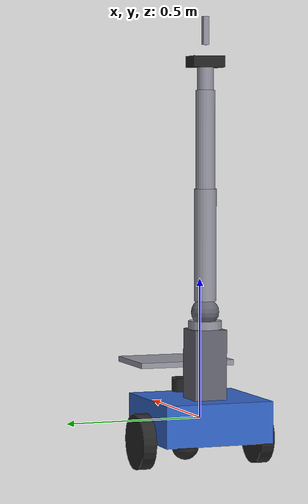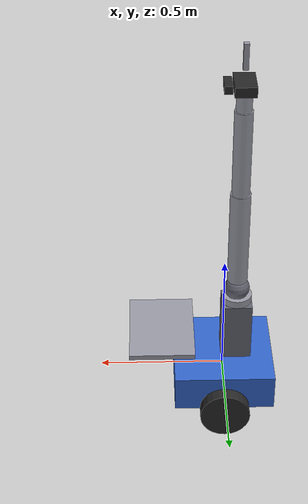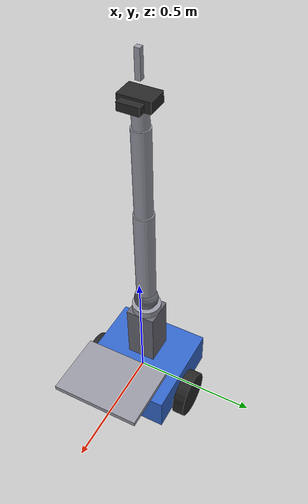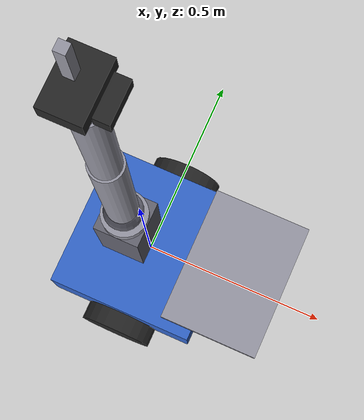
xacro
<?xml version="1.0"?>
<robot name="shelf_bot" xmlns:xacro="http://www.ros.org/wiki/xacro">

  <xacro:arg name="controllers_yaml" default=""/>

  <!-- ===================== helper macros ===================== -->
  <xacro:macro name="box_inertia" params="m x y z">
    <inertial>
      <mass value="${m}"/>
      <inertia
        ixx="${m*(y*y+z*z)/12.0}" iyy="${m*(x*x+z*z)/12.0}" izz="${m*(x*x+y*y)/12.0}"
        ixy="0" ixz="0" iyz="0"/>
    </inertial>
  </xacro:macro>

  <xacro:macro name="cyl_inertia" params="m r l">
    <inertial>
      <mass value="${m}"/>
      <inertia
        ixx="${m*(3*r*r+l*l)/12.0}" iyy="${m*(3*r*r+l*l)/12.0}" izz="${m*r*r/2.0}"
        ixy="0" ixz="0" iyz="0"/>
    </inertial>
  </xacro:macro>

  <material name="grey"><color rgba="0.4 0.4 0.45 1"/></material>
  <material name="dark"><color rgba="0.15 0.15 0.15 1"/></material>
  <material name="blue"><color rgba="0.2 0.4 0.8 1"/></material>
  <material name="metal"><color rgba="0.6 0.6 0.65 1"/></material>

  <!-- ===================== base ===================== -->
  <link name="base_link">
    <visual>
      <geometry><box size="0.40 0.40 0.15"/></geometry>
      <material name="blue"/>
    </visual>
    <collision><geometry><box size="0.40 0.40 0.15"/></geometry></collision>
    <xacro:box_inertia m="15.0" x="0.40" y="0.40" z="0.15"/>
  </link>

  <!-- drive wheels (continuous, velocity-controlled) -->
  <xacro:macro name="wheel" params="name y">
    <link name="${name}">
      <visual>
        <origin rpy="1.5708 0 0"/>
        <geometry><cylinder radius="0.10" length="0.05"/></geometry>
        <material name="dark"/>
      </visual>
      <collision>
        <origin rpy="1.5708 0 0"/>
        <geometry><cylinder radius="0.10" length="0.05"/></geometry>
      </collision>
      <xacro:cyl_inertia m="1.0" r="0.10" l="0.05"/>
    </link>
    <joint name="${name}_joint" type="continuous">
      <parent link="base_link"/>
      <child link="${name}"/>
      <origin xyz="0 ${y} -0.075"/>
      <axis xyz="0 1 0"/>
    </joint>
  </xacro:macro>
  <xacro:wheel name="left_wheel" y="0.225"/>
  <xacro:wheel name="right_wheel" y="-0.225"/>

  <!-- front caster (passive) -->
  <link name="caster">
    <visual><geometry><sphere radius="0.05"/></geometry><material name="dark"/></visual>
    <collision><geometry><sphere radius="0.05"/></geometry></collision>
    <xacro:cyl_inertia m="0.3" r="0.05" l="0.05"/>
  </link>
  <joint name="caster_joint" type="fixed">
    <parent link="base_link"/><child link="caster"/>
    <origin xyz="0.15 0 -0.125"/>
  </joint>

  <!-- column carrying the arm -->
  <link name="column">
    <visual><geometry><box size="0.12 0.12 0.25"/></geometry><material name="grey"/></visual>
    <collision><geometry><box size="0.12 0.12 0.25"/></geometry></collision>
    <xacro:box_inertia m="3.0" x="0.12" y="0.12" z="0.25"/>
  </link>
  <joint name="column_joint" type="fixed">
    <parent link="base_link"/><child link="column"/>
    <origin xyz="-0.05 0 0.20"/>
  </joint>

  <!-- tray deck in front of the column; cans are spawned into its cells -->
  <link name="tray">
    <visual><geometry><box size="0.26 0.36 0.02"/></geometry><material name="metal"/></visual>
    <collision>
      <geometry><box size="0.26 0.36 0.02"/></geometry>
    </collision>
    <xacro:box_inertia m="1.0" x="0.26" y="0.36" z="0.02"/>
  </link>
  <joint name="tray_joint" type="fixed">
    <parent link="base_link"/><child link="tray"/>
    <origin xyz="0.25 0 0.18"/>
  </joint>

  <!-- ===================== 5-DoF arm ===================== -->
  <!-- arm base at base_link z=0.325 -> world z=0.5 when spawned -->
  <link name="arm_base">
    <visual><geometry><cylinder radius="0.06" length="0.06"/></geometry><material name="metal"/></visual>
    <collision><geometry><cylinder radius="0.06" length="0.06"/></geometry></collision>
    <xacro:cyl_inertia m="1.0" r="0.06" l="0.06"/>
  </link>
  <joint name="arm_base_joint" type="fixed">
    <parent link="base_link"/><child link="arm_base"/>
    <origin xyz="-0.05 0 0.325"/>
  </joint>

  <xacro:macro name="arm_link" params="name len r">
    <link name="${name}">
      <visual>
        <origin xyz="0 0 ${len/2.0}"/>
        <geometry><cylinder radius="${r}" length="${len}"/></geometry>
        <material name="metal"/>
      </visual>
      <collision>
        <origin xyz="0 0 ${len/2.0}"/>
        <geometry><cylinder radius="${r}" length="${len}"/></geometry>
      </collision>
      <xacro:cyl_inertia m="1.2" r="${r}" l="${len}"/>
    </link>
  </xacro:macro>

  <!-- joint 1: shoulder pan (about z) -->
  <link name="shoulder">
    <visual><geometry><sphere radius="0.05"/></geometry><material name="grey"/></visual>
    <collision><geometry><sphere radius="0.05"/></geometry></collision>
    <xacro:cyl_inertia m="0.8" r="0.05" l="0.05"/>
  </link>
  <joint name="joint_pan" type="revolute">
    <parent link="arm_base"/><child link="shoulder"/>
    <origin xyz="0 0 0.06"/>
    <axis xyz="0 0 1"/>
    <limit lower="-3.14" upper="3.14" effort="60" velocity="2.0"/>
  </joint>

  <!-- joint 2: shoulder lift (about y) -> upper arm -->
  <xacro:arm_link name="upper_arm" len="0.40" r="0.04"/>
  <joint name="joint_lift" type="revolute">
    <parent link="shoulder"/><child link="upper_arm"/>
    <origin xyz="0 0 0.04"/>
    <axis xyz="0 1 0"/>
    <limit lower="-3.14" upper="3.14" effort="60" velocity="2.0"/>
  </joint>

  <!-- joint 3: elbow (about y) -> forearm -->
  <xacro:arm_link name="forearm" len="0.35" r="0.035"/>
  <joint name="joint_elbow" type="revolute">
    <parent link="upper_arm"/><child link="forearm"/>
    <origin xyz="0 0 0.40"/>
    <axis xyz="0 1 0"/>
    <limit lower="-3.14" upper="3.14" effort="40" velocity="2.0"/>
  </joint>

  <!-- joint 4: wrist pitch (about y) -> wrist -->
  <xacro:arm_link name="wrist" len="0.10" r="0.03"/>
  <joint name="joint_wrist_pitch" type="revolute">
    <parent link="forearm"/><child link="wrist"/>
    <origin xyz="0 0 0.35"/>
    <axis xyz="0 1 0"/>
    <limit lower="-3.14" upper="3.14" effort="20" velocity="2.0"/>
  </joint>

  <!-- joint 5: wrist roll (about z) -> gripper base -->
  <link name="gripper_base">
    <visual><geometry><box size="0.08 0.12 0.04"/></geometry><material name="dark"/></visual>
    <collision><geometry><box size="0.08 0.12 0.04"/></geometry></collision>
    <xacro:box_inertia m="0.4" x="0.08" y="0.12" z="0.04"/>
  </link>
  <joint name="joint_wrist_roll" type="revolute">
    <parent link="wrist"/><child link="gripper_base"/>
    <origin xyz="0 0 0.10"/>
    <axis xyz="0 0 1"/>
    <limit lower="-3.14" upper="3.14" effort="20" velocity="2.0"/>
  </joint>

  <!-- grasp reference frame at the fingertips (tool point) -->
  <link name="tool"/>
  <joint name="tool_joint" type="fixed">
    <parent link="gripper_base"/><child link="tool"/>
    <origin xyz="0 0 0.11"/>
  </joint>

  <xacro:macro name="finger" params="name sign">
    <link name="${name}">
      <visual>
        <origin xyz="0 0 0.05"/>
        <geometry><box size="0.02 0.02 0.10"/></geometry>
        <material name="metal"/>
      </visual>
      <collision>
        <origin xyz="0 0 0.05"/>
        <geometry><box size="0.02 0.02 0.10"/></geometry>
      </collision>
      <xacro:box_inertia m="0.05" x="0.02" y="0.02" z="0.10"/>
    </link>
    <joint name="${name}_joint" type="prismatic">
      <parent link="gripper_base"/><child link="${name}"/>
      <origin xyz="0 0 0.06"/>
      <axis xyz="0 ${sign} 0"/>
      <limit lower="0.0" upper="0.05" effort="50" velocity="0.5"/>
    </joint>
  </xacro:macro>
  <xacro:finger name="left_finger" sign="1"/>
  <xacro:finger name="right_finger" sign="-1"/>

  <!-- ===================== sensors (gz) ===================== -->
  <link name="lidar"><visual><geometry><cylinder radius="0.04" length="0.05"/></geometry><material name="dark"/></visual>
    <xacro:cyl_inertia m="0.1" r="0.04" l="0.05"/></link>
  <joint name="lidar_joint" type="fixed"><parent link="base_link"/><child link="lidar"/>
    <origin xyz="0.18 0 0.10"/></joint>

  <link name="camera"><visual><geometry><box size="0.03 0.08 0.03"/></geometry><material name="dark"/></visual>
    <xacro:box_inertia m="0.05" x="0.03" y="0.08" z="0.03"/></link>
  <joint name="camera_joint" type="fixed"><parent link="gripper_base"/><child link="camera"/>
    <origin xyz="0.06 0 0" rpy="0 1.5708 0"/></joint>

  <gazebo reference="lidar">
    <sensor name="lidar" type="gpu_lidar">
      <topic>scan</topic>
      <update_rate>10</update_rate>
      <always_on>1</always_on>
      <lidar>
        <scan><horizontal><samples>360</samples><resolution>1</resolution>
          <min_angle>-3.14159</min_angle><max_angle>3.14159</max_angle></horizontal></scan>
        <range><min>0.12</min><max>10.0</max><resolution>0.01</resolution></range>
      </lidar>
    </sensor>
  </gazebo>

  <gazebo reference="camera">
    <sensor name="wrist_camera" type="rgbd_camera">
      <topic>wrist_camera</topic>
      <update_rate>15</update_rate>
      <always_on>1</always_on>
      <camera>
        <horizontal_fov>1.2</horizontal_fov>
        <image><width>640</width><height>480</height></image>
        <clip><near>0.05</near><far>8.0</far></clip>
      </camera>
    </sensor>
  </gazebo>

  <!-- higher friction on fingers + can contact for a reliable grasp -->
  <gazebo reference="left_finger"><mu1>1.5</mu1><mu2>1.5</mu2></gazebo>
  <gazebo reference="right_finger"><mu1>1.5</mu1><mu2>1.5</mu2></gazebo>

  <!-- ===================== ros2_control ===================== -->
  <ros2_control name="GazeboSystem" type="system">
    <hardware><plugin>gz_ros2_control/GazeboSimSystem</plugin></hardware>

    <joint name="left_wheel_joint">
      <command_interface name="velocity"/>
      <state_interface name="position"/><state_interface name="velocity"/>
    </joint>
    <joint name="right_wheel_joint">
      <command_interface name="velocity"/>
      <state_interface name="position"/><state_interface name="velocity"/>
    </joint>

    <xacro:macro name="pos_joint" params="name">
      <joint name="${name}">
        <command_interface name="position"/>
        <state_interface name="position"/><state_interface name="velocity"/>
      </joint>
    </xacro:macro>
    <xacro:pos_joint name="joint_pan"/>
    <xacro:pos_joint name="joint_lift"/>
    <xacro:pos_joint name="joint_elbow"/>
    <xacro:pos_joint name="joint_wrist_pitch"/>
    <xacro:pos_joint name="joint_wrist_roll"/>
    <xacro:pos_joint name="left_finger_joint"/>
    <xacro:pos_joint name="right_finger_joint"/>
  </ros2_control>

  <gazebo>
    <plugin filename="gz_ros2_control-system"
            name="gz_ros2_control::GazeboSimROS2ControlPlugin">
      <parameters>$(arg controllers_yaml)</parameters>
    </plugin>
  </gazebo>

</robot>
